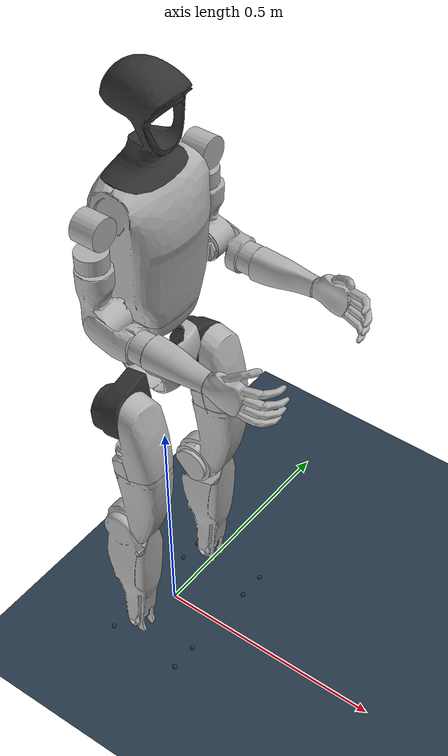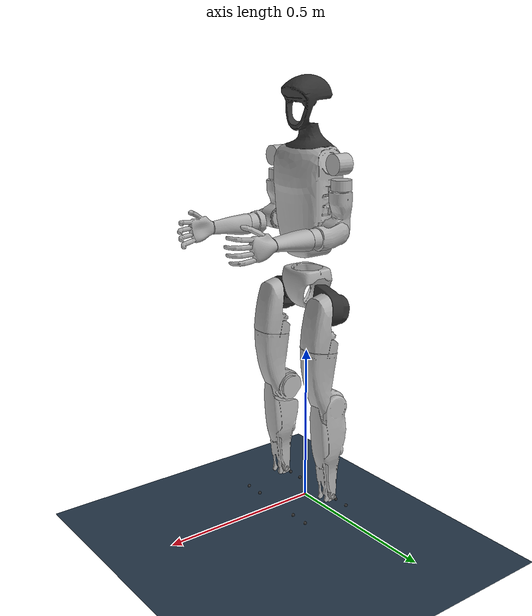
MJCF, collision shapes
<mujoco model="g1_23dof">
  <compiler angle="radian" meshdir="meshes"/>

  <asset>
    <mesh name="pelvis" file="pelvis.STL"/>
    <mesh name="pelvis_contour_link" file="pelvis_contour_link.STL"/>
    <mesh name="left_hip_pitch_link" file="left_hip_pitch_link.STL"/>
    <mesh name="left_hip_roll_link" file="left_hip_roll_link.STL"/>
    <mesh name="left_hip_yaw_link" file="left_hip_yaw_link.STL"/>
    <mesh name="left_knee_link" file="left_knee_link.STL"/>
    <mesh name="left_ankle_pitch_link" file="left_ankle_pitch_link.STL"/>
    <mesh name="left_ankle_roll_link" file="left_ankle_roll_link.STL"/>
    <mesh name="right_hip_pitch_link" file="right_hip_pitch_link.STL"/>
    <mesh name="right_hip_roll_link" file="right_hip_roll_link.STL"/>
    <mesh name="right_hip_yaw_link" file="right_hip_yaw_link.STL"/>
    <mesh name="right_knee_link" file="right_knee_link.STL"/>
    <mesh name="right_ankle_pitch_link" file="right_ankle_pitch_link.STL"/>
    <mesh name="right_ankle_roll_link" file="right_ankle_roll_link.STL"/>
    <mesh name="waist_yaw_link" file="waist_yaw_link.STL"/>
    <mesh name="torso_link" file="torso_link.STL"/>
    <mesh name="logo_link" file="logo_link.STL"/>
    <mesh name="head_link" file="head_link.STL"/>
    <mesh name="waist_support_link" file="waist_support_link.STL"/>
    <mesh name="left_shoulder_pitch_link" file="left_shoulder_pitch_link.STL"/>
    <mesh name="left_shoulder_roll_link" file="left_shoulder_roll_link.STL"/>
    <mesh name="left_shoulder_yaw_link" file="left_shoulder_yaw_link.STL"/>
    <mesh name="left_elbow_link" file="left_elbow_link.STL"/>
    <mesh name="left_wrist_roll_rubber_hand" file="left_wrist_roll_rubber_hand.STL"/>
    <mesh name="right_shoulder_pitch_link" file="right_shoulder_pitch_link.STL"/>
    <mesh name="right_shoulder_roll_link" file="right_shoulder_roll_link.STL"/>
    <mesh name="right_shoulder_yaw_link" file="right_shoulder_yaw_link.STL"/>
    <mesh name="right_elbow_link" file="right_elbow_link.STL"/>
    <mesh name="right_wrist_roll_rubber_hand" file="right_wrist_roll_rubber_hand.STL"/>
    <texture name="texplane" builtin="checker" height="512" width="512" rgb1=".2 .3 .4" rgb2=".1 .15 .2" type="2d" />
    <material name="MatPlane" reflectance="0.5" shininess="0.01" specular="0.1" texrepeat="1 1" texture="texplane" texuniform="true" />
  </asset>

  <worldbody>
    <body name="pelvis" pos="0 0 0.793">
      <inertial pos="0 0 -0.07605" quat="1 0 -0.000399148 0" mass="3.813" diaginertia="0.010549 0.0093089 0.0079184"/>
      <joint name="floating_base_joint" type="free"/>
      <geom type="mesh" contype="0" conaffinity="0" group="1" density="0" rgba="0.2 0.2 0.2 1" mesh="pelvis"/>
      <geom type="mesh" contype="0" conaffinity="0" group="1" density="0" rgba="0.7 0.7 0.7 1" mesh="pelvis_contour_link"/>
      <geom type="mesh" rgba="0.7 0.7 0.7 1" mesh="pelvis_contour_link"/>
      <body name="left_hip_pitch_link" pos="0 0.064452 -0.1027">
        <inertial pos="0.002741 0.047791 -0.02606" quat="0.954862 0.293964 0.0302556 0.030122" mass="1.35" diaginertia="0.00181517 0.00153422 0.00116212"/>
        <joint name="left_hip_pitch_joint" pos="0 0 0" axis="0 1 0" range="-2.5307 2.8798" actuatorfrcrange="-88 88"/>
        <geom type="mesh" contype="0" conaffinity="0" group="1" density="0" rgba="0.2 0.2 0.2 1" mesh="left_hip_pitch_link"/>
        <geom type="mesh" rgba="0.2 0.2 0.2 1" mesh="left_hip_pitch_link"/>
        <body name="left_hip_roll_link" pos="0 0.052 -0.030465" quat="0.996179 0 -0.0873386 0">
          <inertial pos="0.029812 -0.001045 -0.087934" quat="0.977808 -1.97119e-05 0.205576 -0.0403793" mass="1.52" diaginertia="0.00254986 0.00241169 0.00148755"/>
          <joint name="left_hip_roll_joint" pos="0 0 0" axis="1 0 0" range="-0.5236 2.9671" actuatorfrcrange="-88 88"/>
          <geom type="mesh" contype="0" conaffinity="0" group="1" density="0" rgba="0.7 0.7 0.7 1" mesh="left_hip_roll_link"/>
          <geom type="mesh" rgba="0.7 0.7 0.7 1" mesh="left_hip_roll_link"/>
          <body name="left_hip_yaw_link" pos="0.025001 0 -0.12412">
            <inertial pos="-0.057709 -0.010981 -0.15078" quat="0.600598 0.15832 0.223482 0.751181" mass="1.702" diaginertia="0.00776166 0.00717575 0.00160139"/>
            <joint name="left_hip_yaw_joint" pos="0 0 0" axis="0 0 1" range="-2.7576 2.7576" actuatorfrcrange="-88 88"/>
            <geom type="mesh" contype="0" conaffinity="0" group="1" density="0" rgba="0.7 0.7 0.7 1" mesh="left_hip_yaw_link"/>
            <geom type="mesh" rgba="0.7 0.7 0.7 1" mesh="left_hip_yaw_link"/>
            <body name="left_knee_link" pos="-0.078273 0.0021489 -0.17734" quat="0.996179 0 0.0873386 0">
              <inertial pos="0.005457 0.003964 -0.12074" quat="0.923418 -0.0327699 0.0158246 0.382067" mass="1.932" diaginertia="0.0113804 0.0112778 0.00146458"/>
              <joint name="left_knee_joint" pos="0 0 0" axis="0 1 0" range="-0.087267 2.8798" actuatorfrcrange="-139 139"/>
              <geom type="mesh" contype="0" conaffinity="0" group="1" density="0" rgba="0.7 0.7 0.7 1" mesh="left_knee_link"/>
              <geom type="mesh" rgba="0.7 0.7 0.7 1" mesh="left_knee_link"/>
              <body name="left_ankle_pitch_link" pos="0 -9.4445e-05 -0.30001">
                <inertial pos="-0.007269 0 0.011137" quat="0.603053 0.369225 0.369225 0.603053" mass="0.074" diaginertia="1.89e-05 1.40805e-05 6.9195e-06"/>
                <joint name="left_ankle_pitch_joint" pos="0 0 0" axis="0 1 0" range="-0.87267 0.5236" actuatorfrcrange="-50 50"/>
                <geom type="mesh" contype="0" conaffinity="0" group="1" density="0" rgba="0.7 0.7 0.7 1" mesh="left_ankle_pitch_link"/>
                <geom type="mesh" rgba="0.7 0.7 0.7 1" mesh="left_ankle_pitch_link"/>
                <body name="left_ankle_roll_link" pos="0 0 -0.017558">
                  <inertial pos="0.026505 0 -0.016425" quat="-0.000481092 0.728482 -0.000618967 0.685065" mass="0.608" diaginertia="0.00167218 0.0016161 0.000217621"/>
                  <joint name="left_ankle_roll_joint" pos="0 0 0" axis="1 0 0" range="-0.2618 0.2618" actuatorfrcrange="-50 50"/>
                  <geom type="mesh" contype="0" conaffinity="0" group="1" density="0" rgba="0.2 0.2 0.2 1" mesh="left_ankle_roll_link"/>
                  <geom size="0.005" pos="-0.05 0.025 -0.03" rgba="0.2 0.2 0.2 1"/>
                  <geom size="0.005" pos="-0.05 -0.025 -0.03" rgba="0.2 0.2 0.2 1"/>
                  <geom size="0.005" pos="0.12 0.03 -0.03" rgba="0.2 0.2 0.2 1"/>
                  <geom size="0.005" pos="0.12 -0.03 -0.03" rgba="0.2 0.2 0.2 1"/>
                </body>
              </body>
            </body>
          </body>
        </body>
      </body>
      <body name="right_hip_pitch_link" pos="0 -0.064452 -0.1027">
        <inertial pos="0.002741 -0.047791 -0.02606" quat="0.954862 -0.293964 0.0302556 -0.030122" mass="1.35" diaginertia="0.00181517 0.00153422 0.00116212"/>
        <joint name="right_hip_pitch_joint" pos="0 0 0" axis="0 1 0" range="-2.5307 2.8798" actuatorfrcrange="-88 88"/>
        <geom type="mesh" contype="0" conaffinity="0" group="1" density="0" rgba="0.2 0.2 0.2 1" mesh="right_hip_pitch_link"/>
        <geom type="mesh" rgba="0.2 0.2 0.2 1" mesh="right_hip_pitch_link"/>
        <body name="right_hip_roll_link" pos="0 -0.052 -0.030465" quat="0.996179 0 -0.0873386 0">
          <inertial pos="0.029812 0.001045 -0.087934" quat="0.977808 1.97119e-05 0.205576 0.0403793" mass="1.52" diaginertia="0.00254986 0.00241169 0.00148755"/>
          <joint name="right_hip_roll_joint" pos="0 0 0" axis="1 0 0" range="-2.9671 0.5236" actuatorfrcrange="-88 88"/>
          <geom type="mesh" contype="0" conaffinity="0" group="1" density="0" rgba="0.7 0.7 0.7 1" mesh="right_hip_roll_link"/>
          <geom type="mesh" rgba="0.7 0.7 0.7 1" mesh="right_hip_roll_link"/>
          <body name="right_hip_yaw_link" pos="0.025001 0 -0.12412">
            <inertial pos="-0.057709 0.010981 -0.15078" quat="0.751181 0.223482 0.15832 0.600598" mass="1.702" diaginertia="0.00776166 0.00717575 0.00160139"/>
            <joint name="right_hip_yaw_joint" pos="0 0 0" axis="0 0 1" range="-2.7576 2.7576" actuatorfrcrange="-88 88"/>
            <geom type="mesh" contype="0" conaffinity="0" group="1" density="0" rgba="0.7 0.7 0.7 1" mesh="right_hip_yaw_link"/>
            <geom type="mesh" rgba="0.7 0.7 0.7 1" mesh="right_hip_yaw_link"/>
            <body name="right_knee_link" pos="-0.078273 -0.0021489 -0.17734" quat="0.996179 0 0.0873386 0">
              <inertial pos="0.005457 -0.003964 -0.12074" quat="0.923439 0.0345276 0.0116333 -0.382012" mass="1.932" diaginertia="0.011374 0.0112843 0.00146452"/>
              <joint name="right_knee_joint" pos="0 0 0" axis="0 1 0" range="-0.087267 2.8798" actuatorfrcrange="-139 139"/>
              <geom type="mesh" contype="0" conaffinity="0" group="1" density="0" rgba="0.7 0.7 0.7 1" mesh="right_knee_link"/>
              <geom type="mesh" rgba="0.7 0.7 0.7 1" mesh="right_knee_link"/>
              <body name="right_ankle_pitch_link" pos="0 9.4445e-05 -0.30001">
                <inertial pos="-0.007269 0 0.011137" quat="0.603053 0.369225 0.369225 0.603053" mass="0.074" diaginertia="1.89e-05 1.40805e-05 6.9195e-06"/>
                <joint name="right_ankle_pitch_joint" pos="0 0 0" axis="0 1 0" range="-0.87267 0.5236" actuatorfrcrange="-50 50"/>
                <geom type="mesh" contype="0" conaffinity="0" group="1" density="0" rgba="0.7 0.7 0.7 1" mesh="right_ankle_pitch_link"/>
                <geom type="mesh" rgba="0.7 0.7 0.7 1" mesh="right_ankle_pitch_link"/>
                <body name="right_ankle_roll_link" pos="0 0 -0.017558">
                  <inertial pos="0.026505 0 -0.016425" quat="0.000481092 0.728482 0.000618967 0.685065" mass="0.608" diaginertia="0.00167218 0.0016161 0.000217621"/>
                  <joint name="right_ankle_roll_joint" pos="0 0 0" axis="1 0 0" range="-0.2618 0.2618" actuatorfrcrange="-50 50"/>
                  <geom type="mesh" contype="0" conaffinity="0" group="1" density="0" rgba="0.2 0.2 0.2 1" mesh="right_ankle_roll_link"/>
                  <geom size="0.005" pos="-0.05 0.025 -0.03" rgba="0.2 0.2 0.2 1"/>
                  <geom size="0.005" pos="-0.05 -0.025 -0.03" rgba="0.2 0.2 0.2 1"/>
                  <geom size="0.005" pos="0.12 0.03 -0.03" rgba="0.2 0.2 0.2 1"/>
                  <geom size="0.005" pos="0.12 -0.03 -0.03" rgba="0.2 0.2 0.2 1"/>
                </body>
              </body>
            </body>
          </body>
        </body>
      </body>
      <body name="torso_link" pos="-0.0039635 0 0.054">
        <inertial pos="0.0034309 0.00025505 0.174524" quat="0.99988 0.000261157 0.0149809 -0.0038211" mass="9.842" diaginertia="0.135151 0.123088 0.0327256"/>
        <joint name="waist_yaw_joint" pos="0 0 0" axis="0 0 1" range="-2.618 2.618" actuatorfrcrange="-88 88"/>
        <geom type="mesh" contype="0" conaffinity="0" group="1" density="0" rgba="0.7 0.7 0.7 1" mesh="torso_link"/>
        <geom type="mesh" rgba="0.7 0.7 0.7 1" mesh="torso_link"/>
        <geom pos="0.0039635 0 -0.054" quat="1 0 0 0" type="mesh" contype="0" conaffinity="0" group="1" density="0" rgba="0.7 0.7 0.7 1" mesh="waist_yaw_link"/>
        <geom pos="0.0039635 0 -0.054" quat="1 0 0 0" type="mesh" contype="0" conaffinity="0" group="1" density="0" rgba="0.2 0.2 0.2 1" mesh="logo_link"/>
        <geom pos="0.0039635 0 -0.054" type="mesh" contype="0" conaffinity="0" group="1" density="0" rgba="0.2 0.2 0.2 1" mesh="head_link"/>
        <geom pos="0.0039635 0 -0.054" type="mesh" rgba="0.2 0.2 0.2 1" mesh="head_link"/>
        <geom pos="0.0039635 0 -0.054" quat="1 0 0 0" type="mesh" contype="0" conaffinity="0" group="1" density="0" rgba="0.7 0.7 0.7 1" mesh="waist_support_link"/>
        <geom pos="0.0039635 0 -0.054" quat="1 0 0 0" type="mesh" rgba="0.7 0.7 0.7 1" mesh="waist_support_link"/>
        <site name="imu" size="0.01" pos="-0.03959 -0.00224 0.13792"/>
        <body name="left_shoulder_pitch_link" pos="0.0039563 0.10022 0.23778" quat="0.990264 0.139201 1.38722e-05 -9.86868e-05">
          <inertial pos="0 0.035892 -0.011628" quat="0.654152 0.0130458 -0.326267 0.68225" mass="0.718" diaginertia="0.000465864 0.000432842 0.000406394"/>
          <joint name="left_shoulder_pitch_joint" pos="0 0 0" axis="0 1 0" range="-3.0892 2.6704" actuatorfrcrange="-25 25"/>
          <geom type="mesh" contype="0" conaffinity="0" group="1" density="0" rgba="0.7 0.7 0.7 1" mesh="left_shoulder_pitch_link"/>
          <geom size="0.03 0.025" pos="0 0.04 -0.01" quat="0.707107 0 0.707107 0" type="cylinder" rgba="0.7 0.7 0.7 1"/>
          <body name="left_shoulder_roll_link" pos="0 0.038 -0.013831" quat="0.990268 -0.139172 0 0">
            <inertial pos="-0.000227 0.00727 -0.063243" quat="0.701256 -0.0196223 -0.00710317 0.712604" mass="0.643" diaginertia="0.000691311 0.000618011 0.000388977"/>
            <joint name="left_shoulder_roll_joint" pos="0 0 0" axis="1 0 0" range="-1.5882 2.2515" actuatorfrcrange="-25 25"/>
            <geom type="mesh" contype="0" conaffinity="0" group="1" density="0" rgba="0.7 0.7 0.7 1" mesh="left_shoulder_roll_link"/>
            <geom size="0.03 0.015" pos="-0.004 0.006 -0.053" type="cylinder" rgba="0.7 0.7 0.7 1"/>
            <body name="left_shoulder_yaw_link" pos="0 0.00624 -0.1032">
              <inertial pos="0.010773 -0.002949 -0.072009" quat="0.716879 -0.0964829 -0.0679942 0.687134" mass="0.734" diaginertia="0.00106187 0.00103217 0.000400661"/>
              <joint name="left_shoulder_yaw_joint" pos="0 0 0" axis="0 0 1" range="-2.618 2.618" actuatorfrcrange="-25 25"/>
              <geom type="mesh" contype="0" conaffinity="0" group="1" density="0" rgba="0.7 0.7 0.7 1" mesh="left_shoulder_yaw_link"/>
              <geom type="mesh" rgba="0.7 0.7 0.7 1" mesh="left_shoulder_yaw_link"/>
              <body name="left_elbow_link" pos="0.015783 0 -0.080518">
                <inertial pos="0.064956 0.004454 -0.010062" quat="0.541765 0.636132 0.388821 0.388129" mass="0.6" diaginertia="0.000443035 0.000421612 0.000259353"/>
                <joint name="left_elbow_joint" pos="0 0 0" axis="0 1 0" range="-1.0472 2.0944" actuatorfrcrange="-25 25"/>
                <geom type="mesh" contype="0" conaffinity="0" group="1" density="0" rgba="0.7 0.7 0.7 1" mesh="left_elbow_link"/>
                <geom type="mesh" rgba="0.7 0.7 0.7 1" mesh="left_elbow_link"/>
                <body name="left_wrist_roll_rubber_hand" pos="0.1 0.00188791 -0.01">
                  <inertial pos="0.107947 0.00163512 0.00202245" quat="0.494051 0.504265 0.48416 0.516933" mass="0.356929" diaginertia="0.00200292 0.0019426 0.000195232"/>
                  <geom type="mesh" contype="0" conaffinity="0" group="1" density="0" rgba="0.7 0.7 0.7 1" mesh="left_wrist_roll_rubber_hand"/>
                  <geom type="mesh" rgba="0.7 0.7 0.7 1" mesh="left_wrist_roll_rubber_hand"/>
                </body>
              </body>
            </body>
          </body>
        </body>
        <body name="right_shoulder_pitch_link" pos="0.0039563 -0.10021 0.23778" quat="0.990264 -0.139201 1.38722e-05 9.86868e-05">
          <inertial pos="0 -0.035892 -0.011628" quat="0.68225 -0.326267 0.0130458 0.654152" mass="0.718" diaginertia="0.000465864 0.000432842 0.000406394"/>
          <joint name="right_shoulder_pitch_joint" pos="0 0 0" axis="0 1 0" range="-3.0892 2.6704" actuatorfrcrange="-25 25"/>
          <geom type="mesh" contype="0" conaffinity="0" group="1" density="0" rgba="0.7 0.7 0.7 1" mesh="right_shoulder_pitch_link"/>
          <geom size="0.03 0.025" pos="0 -0.04 -0.01" quat="0.707107 0 0.707107 0" type="cylinder" rgba="0.7 0.7 0.7 1"/>
          <body name="right_shoulder_roll_link" pos="0 -0.038 -0.013831" quat="0.990268 0.139172 0 0">
            <inertial pos="-0.000227 -0.00727 -0.063243" quat="0.712604 -0.00710317 -0.0196223 0.701256" mass="0.643" diaginertia="0.000691311 0.000618011 0.000388977"/>
            <joint name="right_shoulder_roll_joint" pos="0 0 0" axis="1 0 0" range="-2.2515 1.5882" actuatorfrcrange="-25 25"/>
            <geom type="mesh" contype="0" conaffinity="0" group="1" density="0" rgba="0.7 0.7 0.7 1" mesh="right_shoulder_roll_link"/>
            <geom size="0.03 0.015" pos="-0.004 -0.006 -0.053" type="cylinder" rgba="0.7 0.7 0.7 1"/>
            <body name="right_shoulder_yaw_link" pos="0 -0.00624 -0.1032">
              <inertial pos="0.010773 0.002949 -0.072009" quat="0.687134 -0.0679942 -0.0964829 0.716879" mass="0.734" diaginertia="0.00106187 0.00103217 0.000400661"/>
              <joint name="right_shoulder_yaw_joint" pos="0 0 0" axis="0 0 1" range="-2.618 2.618" actuatorfrcrange="-25 25"/>
              <geom type="mesh" contype="0" conaffinity="0" group="1" density="0" rgba="0.7 0.7 0.7 1" mesh="right_shoulder_yaw_link"/>
              <geom type="mesh" rgba="0.7 0.7 0.7 1" mesh="right_shoulder_yaw_link"/>
              <body name="right_elbow_link" pos="0.015783 0 -0.080518">
                <inertial pos="0.064956 -0.004454 -0.010062" quat="0.388129 0.388821 0.636132 0.541765" mass="0.6" diaginertia="0.000443035 0.000421612 0.000259353"/>
                <joint name="right_elbow_joint" pos="0 0 0" axis="0 1 0" range="-1.0472 2.0944" actuatorfrcrange="-25 25"/>
                <geom type="mesh" contype="0" conaffinity="0" group="1" density="0" rgba="0.7 0.7 0.7 1" mesh="right_elbow_link"/>
                <geom type="mesh" rgba="0.7 0.7 0.7 1" mesh="right_elbow_link"/>
                <body name="right_wrist_roll_rubber_hand" pos="0.1 -0.00188791 -0.01">
                  <inertial pos="0.107947 -0.00163512 0.00202245" quat="0.516933 0.48416 0.504265 0.494051" mass="0.356929" diaginertia="0.00200292 0.0019426 0.000195232"/>
                  <geom type="mesh" contype="0" conaffinity="0" group="1" density="0" rgba="0.7 0.7 0.7 1" mesh="right_wrist_roll_rubber_hand"/>
                  <geom type="mesh" rgba="0.7 0.7 0.7 1" mesh="right_wrist_roll_rubber_hand"/>
                </body>
              </body>
            </body>
          </body>
        </body>
      </body>
    </body>
    <geom name="ground" type="plane" size="0 0 1" pos="0.001 0 0" quat="1 0 0 0" material="MatPlane" condim="1" conaffinity='15'/>
    <light pos="0 0 1000" castshadow="true" />
  </worldbody>

  <actuator>
    <motor name="left_hip_pitch_joint" joint="left_hip_pitch_joint" gear="1" ctrllimited="true" ctrlrange="-200 200"/>
    <motor name="left_hip_roll_joint" joint="left_hip_roll_joint" gear="1" ctrllimited="true" ctrlrange="-200 200"/>
    <motor name="left_hip_yaw_joint" joint="left_hip_yaw_joint" gear="1" ctrllimited="true" ctrlrange="-200 200"/>
    <motor name="left_knee_joint" joint="left_knee_joint" gear="1" ctrllimited="true" ctrlrange="-200 200"/>
    <motor name="left_ankle_pitch_joint" joint="left_ankle_pitch_joint" gear="1" ctrllimited="true" ctrlrange="-200 200"/>
    <motor name="left_ankle_roll_joint" joint="left_ankle_roll_joint" gear="1" ctrllimited="true" ctrlrange="-200 200"/>
    <motor name="right_hip_pitch_joint" joint="right_hip_pitch_joint" gear="1" ctrllimited="true" ctrlrange="-200 200"/>
    <motor name="right_hip_roll_joint" joint="right_hip_roll_joint" gear="1" ctrllimited="true" ctrlrange="-200 200"/>
    <motor name="right_hip_yaw_joint" joint="right_hip_yaw_joint" gear="1" ctrllimited="true" ctrlrange="-200 200"/>
    <motor name="right_knee_joint" joint="right_knee_joint" gear="1" ctrllimited="true" ctrlrange="-200 200"/>
    <motor name="right_ankle_pitch_joint" joint="right_ankle_pitch_joint" gear="1" ctrllimited="true" ctrlrange="-200 200"/>
    <motor name="right_ankle_roll_joint" joint="right_ankle_roll_joint" gear="1" ctrllimited="true" ctrlrange="-200 200"/>
    <motor name="waist_yaw_joint" joint="waist_yaw_joint" gear="1" ctrllimited="true" ctrlrange="-200 200"/>
    <motor name="left_shoulder_pitch_joint" joint="left_shoulder_pitch_joint" gear="1" ctrllimited="true" ctrlrange="-200 200"/>
    <motor name="left_shoulder_roll_joint" joint="left_shoulder_roll_joint" gear="1" ctrllimited="true" ctrlrange="-200 200"/>
    <motor name="left_shoulder_yaw_joint" joint="left_shoulder_yaw_joint" gear="1" ctrllimited="true" ctrlrange="-200 200"/>
    <motor name="left_elbow_joint" joint="left_elbow_joint" gear="1" ctrllimited="true" ctrlrange="-200 200"/>
    <motor name="right_shoulder_pitch_joint" joint="right_shoulder_pitch_joint" gear="1" ctrllimited="true" ctrlrange="-200 200"/>
    <motor name="right_shoulder_roll_joint" joint="right_shoulder_roll_joint" gear="1" ctrllimited="true" ctrlrange="-200 200"/>
    <motor name="right_shoulder_yaw_joint" joint="right_shoulder_yaw_joint" gear="1" ctrllimited="true" ctrlrange="-200 200"/>
    <motor name="right_elbow_joint" joint="right_elbow_joint" gear="1" ctrllimited="true" ctrlrange="-200 200"/>
  </actuator>

  <sensor>
    <framequat name='orientation' objtype='site' noise='0.001' objname='imu'/>
    <framepos name='position' objtype='site' noise='0.001' objname='imu'/>
    <gyro name="angular-velocity" site="imu" noise="5e-4" cutoff="34.9"/>
    <velocimeter   name='linear-velocity'     site='imu' noise='0.001' cutoff='30'/>
    <accelerometer name="linear-acceleration" site="imu" noise="1e-2" cutoff="157"/>
    <magnetometer  name='magnetometer'        site='imu'/>
  </sensor>

  <keyframe>
    <key name="home"
      qpos="0 0 0.8 1 0 0 0 -0.4 0 0 0.8 -0.35 0 -0.4 0.0 0.0 0.8 -0.35 0 0 0 0 0 0 0 0 0 0" />
  </keyframe>

</mujoco>
